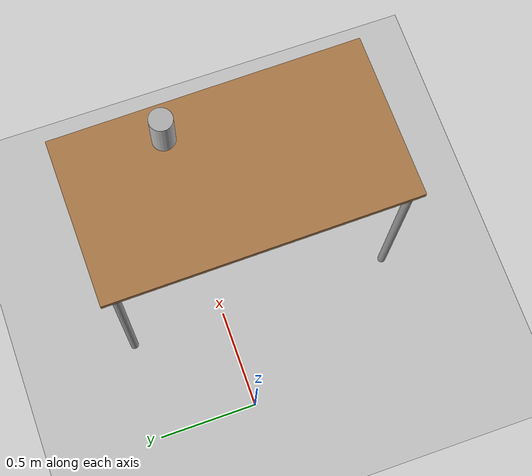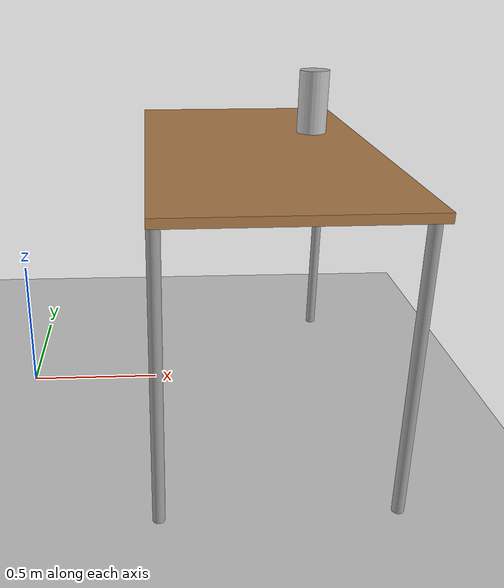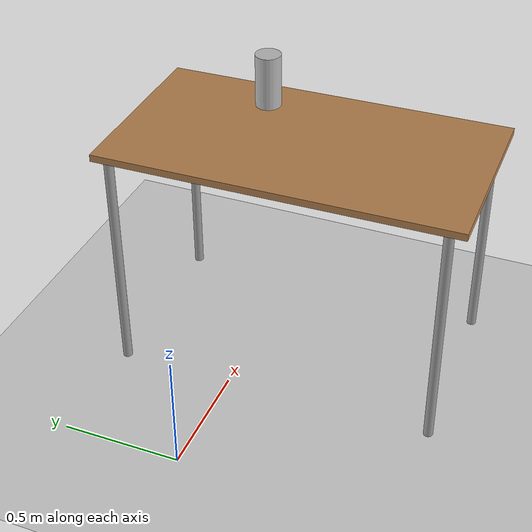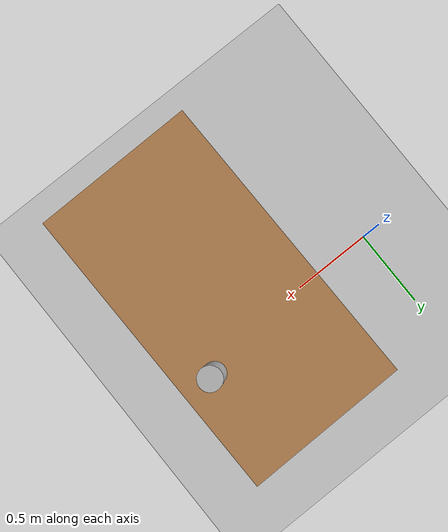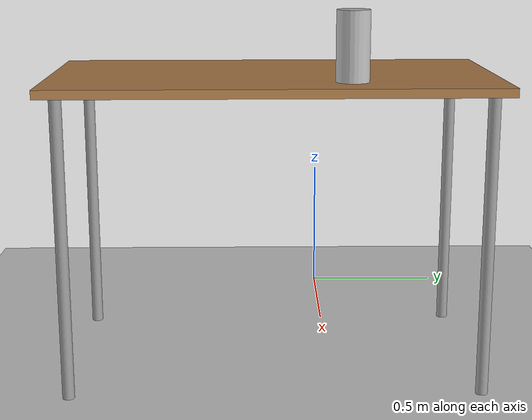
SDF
<sdf version="1.6">
 <world name="default">
  <physics name="default_physics" default="0" type="ode">
   <real_time_update_rate>500</real_time_update_rate>
   <max_step_size>0.002</max_step_size>
   <ode>
    <solver>
     <type>quick</type>
     <iters>100</iters>
     <sor>1.3</sor>
     <use_dynamic_moi_rescaling>0</use_dynamic_moi_rescaling>
    </solver>
    <constraints>
     <cfm>0.0001</cfm>
     <erp>0.2</erp>
     <contact_max_correcting_vel>100</contact_max_correcting_vel>
     <contact_surface_layer>0.001</contact_surface_layer>
    </constraints>
   </ode>
   <real_time_factor>1</real_time_factor>
  </physics>
  <light name="sun" type="directional">
   <pose>0 0 10 0 -0 0</pose>
   <diffuse>0.8 0.8 0.8 1</diffuse>
   <specular>0.1 0.1 0.1 1</specular>
   <attenuation>
    <range>1000</range>
    <constant>0.9</constant>
    <linear>0.01</linear>
    <quadratic>0.001</quadratic>
   </attenuation>
   <direction>-0.5 0.5 -1</direction>
  </light>
  <model name="ground_plane">
   <static>1</static>
   <link name="link">
    <collision name="collision">
     <geometry><plane><normal>0 0 1</normal><size>100 100</size></plane></geometry>
     <surface><friction><ode><mu>100</mu><mu2>50</mu2></ode></friction></surface>
    </collision>
    <visual name="visual">
     <cast_shadows>0</cast_shadows>
     <geometry><plane><normal>0 0 1</normal><size>100 100</size></plane></geometry>
     <material>
      <script><uri>file://media/materials/scripts/gazebo.material</uri><name>Gazebo/Grey</name></script>
     </material>
    </visual>
   </link>
  </model>
  <gravity>0 0 -9.8</gravity>
  <magnetic_field>6e-06 2.3e-05 -4.2e-05</magnetic_field>
  <atmosphere type="adiabatic"/>
  <physics name="default_physics" default="0" type="ode">
   <max_step_size>0.001</max_step_size>
   <real_time_factor>1</real_time_factor>
   <real_time_update_rate>1000</real_time_update_rate>
  </physics>
  <scene><ambient>0.4 0.4 0.4 1</ambient><background>0.7 0.7 0.7 1</background><shadows>1</shadows></scene>
  <spherical_coordinates>
   <surface_model>EARTH_WGS84</surface_model>
   <latitude_deg>0</latitude_deg>
   <longitude_deg>0</longitude_deg>
   <elevation>0</elevation>
   <heading_deg>0</heading_deg>
  </spherical_coordinates>
  <model name="table">
   <static>1</static>
   <link name="link">
    <collision name="surface">
     <pose>0 0 1 0 -0 0</pose>
     <geometry><box><size>1.5 0.8 0.03</size></box></geometry>
     <surface><friction><ode><mu>0.6</mu><mu2>0.6</mu2></ode></friction></surface>
    </collision>
    <visual name="visual1">
     <pose>0 0 1 0 -0 0</pose>
     <geometry><box><size>1.5 0.8 0.03</size></box></geometry>
     <material>
      <script><uri>file://media/materials/scripts/gazebo.material</uri><name>Gazebo/Wood</name></script>
     </material>
    </visual>
    <collision name="front_left_leg">
     <pose>0.68 0.38 0.5 0 -0 0</pose>
     <geometry><cylinder><radius>0.02</radius><length>1</length></cylinder></geometry>
    </collision>
    <visual name="front_left_leg">
     <pose>0.68 0.38 0.5 0 -0 0</pose>
     <geometry><cylinder><radius>0.02</radius><length>1</length></cylinder></geometry>
     <material>
      <script><uri>file://media/materials/scripts/gazebo.material</uri><name>Gazebo/Grey</name></script>
     </material>
    </visual>
    <collision name="front_right_leg">
     <pose>0.68 -0.38 0.5 0 -0 0</pose>
     <geometry><cylinder><radius>0.02</radius><length>1</length></cylinder></geometry>
    </collision>
    <visual name="front_right_leg">
     <pose>0.68 -0.38 0.5 0 -0 0</pose>
     <geometry><cylinder><radius>0.02</radius><length>1</length></cylinder></geometry>
     <material>
      <script><uri>file://media/materials/scripts/gazebo.material</uri><name>Gazebo/Grey</name></script>
     </material>
    </visual>
    <collision name="back_right_leg">
     <pose>-0.68 -0.38 0.5 0 -0 0</pose>
     <geometry><cylinder><radius>0.02</radius><length>1</length></cylinder></geometry>
    </collision>
    <visual name="back_right_leg">
     <pose>-0.68 -0.38 0.5 0 -0 0</pose>
     <geometry><cylinder><radius>0.02</radius><length>1</length></cylinder></geometry>
     <material>
      <script><uri>file://media/materials/scripts/gazebo.material</uri><name>Gazebo/Grey</name></script>
     </material>
    </visual>
    <collision name="back_left_leg">
     <pose>-0.68 0.38 0.5 0 -0 0</pose>
     <geometry><cylinder><radius>0.02</radius><length>1</length></cylinder></geometry>
    </collision>
    <visual name="back_left_leg">
     <pose>-0.68 0.38 0.5 0 -0 0</pose>
     <geometry><cylinder><radius>0.02</radius><length>1</length></cylinder></geometry>
     <material>
      <script><uri>file://media/materials/scripts/gazebo.material</uri><name>Gazebo/Grey</name></script>
     </material>
    </visual>
   </link>
   <pose>0.881532 -0.19417 0 0 0 -1.55949</pose>
  </model>
  <model name="beer">
   <link name="link">
    <pose>0 0 0.115 0 -0 0</pose>
    <inertial>
     <mass>0.39</mass>
     <inertia><ixx>0.00058</ixx><ixy>0</ixy><ixz>0</ixz><iyy>0.00058</iyy><iyz>0</iyz><izz>0.00019</izz></inertia>
    </inertial>
    <collision name="collision">
     <geometry><cylinder><radius>0.055</radius><length>0.23</length></cylinder></geometry>
    </collision>
    <visual name="visual">
     <geometry><cylinder><radius>0.055</radius><length>0.23</length></cylinder></geometry>
     <material>
      <script>
       <uri>model://beer/materials/scripts</uri>
       <uri>model://beer/materials/textures</uri>
       <name>Beer/Diffuse</name>
      </script>
     </material>
    </visual>
   </link>
   <pose>1.11035 0.058944 1.01499 2.2e-05 4e-06 0.000174</pose>
  </model>
  <light name="user_spot_light_0" type="spot">
   <pose>2.14395 1.43865 1 0 -0 0</pose>
   <diffuse>0.5 0.5 0.5 1</diffuse>
   <specular>0.1 0.1 0.1 1</specular>
   <direction>0 0 -1</direction>
   <attenuation>
    <range>20</range>
    <constant>0.5</constant>
    <linear>0.01</linear>
    <quadratic>0.001</quadratic>
   </attenuation>
   <cast_shadows>0</cast_shadows>
   <spot><inner_angle>0.6</inner_angle><outer_angle>1</outer_angle><falloff>1</falloff></spot>
  </light>
 </world>
</sdf>
